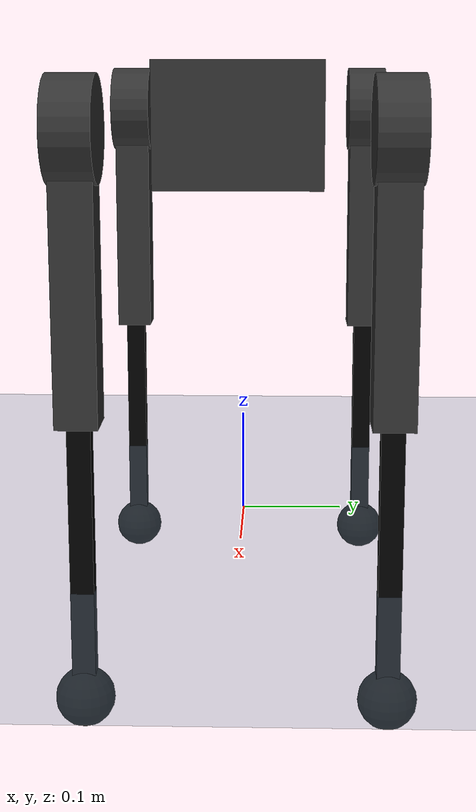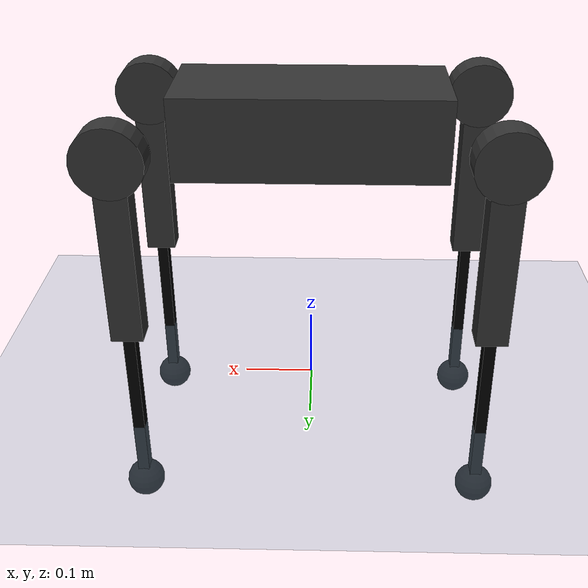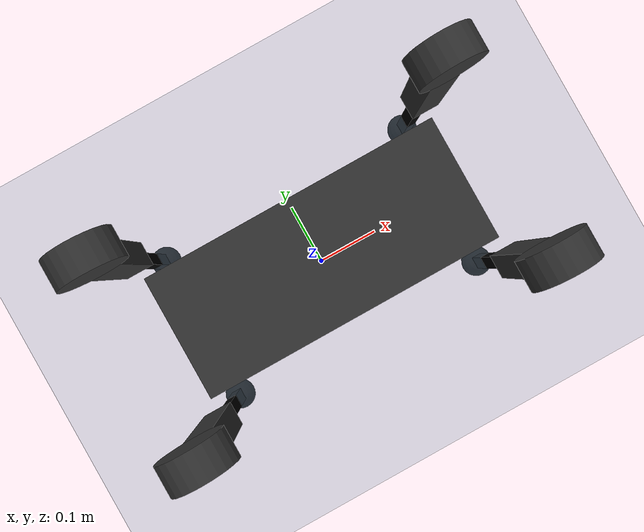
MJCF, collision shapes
<mujoco model="go1 feetonly flat terrain scene">
  <include file="aliengo.xml"/>

  <statistic center="0 0 0.1" extent="0.8" meansize="0.04"/>

  <visual>
    <headlight diffuse=".8 .8 .8" ambient=".2 .2 .2" specular="1 1 1"/>
    <rgba force="1 0 0 1"/>
    <global azimuth="120" elevation="-20"/>
    <map force="0.01"/>
    <scale forcewidth="0.3" contactwidth="0.5" contactheight="0.2"/>
    <quality shadowsize="8192"/>
  </visual>

  <asset>
    <texture type="skybox" builtin="gradient" rgb1="1 1 1" rgb2="1 1 1" width="800" height="800"/>
    <texture type="2d" name="groundplane" builtin="checker" mark="edge" rgb1="1 1 1" rgb2="1 1 1" markrgb="0 0 0"
      width="300" height="300"/>
    <material name="groundplane" texture="groundplane" texuniform="true" texrepeat="5 5" reflectance="0"/>
  </asset>

  <worldbody>
    <geom name="floor" size="0 0 0.01" type="plane" material="groundplane" contype="1" conaffinity="0" priority="1"
      friction="0.6" condim="3"/>
  </worldbody>

</mujoco>

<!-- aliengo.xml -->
<mujoco model="aliengo_description">
    <compiler angle="radian" meshdir="meshes/" />
    <size njmax="500" nconmax="100" />
    <option gravity='0 0 -9.806' iterations='50' solver='Newton' timestep='0.002' cone='elliptic'  impratio="1000"/>

    <default>
        <geom contype="1" conaffinity="1" friction="1 0.3 0.3" rgba="0.5 0.6 0.7 1" margin="0.001" group="0"/>

        <light castshadow="false" diffuse="1 1 1"/>
        <motor ctrlrange="-44.4 44.4" ctrllimited="true"/>
        <camera fovy="60"/>
        <joint damping="0.0" armature="0.0" frictionloss="0.0" />

    </default>

    <asset>
        <mesh name="trunk" file="trunk.stl" />
        <mesh name="hip" file="hip.stl" />
        <mesh name="thigh_mirror" file="thigh_mirror.stl" />
        <mesh name="calf" file="calf.stl" />
        <mesh name="thigh" file="thigh.stl" />
    </asset>

    <asset>
        <texture type="skybox" builtin="gradient" rgb1="1.0 1.0 1.0" rgb2="1.0 1.0 1.0" width="512" height="512"/>
        <texture name="plane" type="2d" builtin="flat" rgb1="0.188 0.188 0.188" rgb2="0.188 0.188 0.188" width="512" height="512" mark="cross" markrgb="1 1 1"/>
        <material name="plane" reflectance="0.0" texture="plane" texrepeat="3 3" texuniform="true"/>
    </asset>

    <visual>
        <rgba com="0.502 1.0 0 0.5" contactforce="0.98 0.4 0.4 0.7" contactpoint="1.0 1.0 0.6 0.4"/>
        <scale com="0.2" forcewidth="0.035" contactwidth="0.10" contactheight="0.04"/>
    </visual>

    <worldbody>

        <light directional="true" diffuse=".8 .8 .8" pos="0 0 10" dir="0 0 -10"/>
        <camera name="track" mode="trackcom" pos="0 -1.3 1.6" xyaxes="1 0 0 0 0.707 0.707"/>

        <body name="trunk" pos="0 0 0.4">
            <inertial pos="0.00846406 0.00404455 -0.000762916" quat="-3.12625e-05 0.708321 0.00247254 0.705886" mass="9.042" diaginertia="0.174706 0.161175 0.033357" />
            <joint type="free" />
            <geom type="mesh" contype="0" conaffinity="0" group="1" rgba="0.2 0.2 0.2 1" mesh="trunk" />
            <geom size="0.18 0.075 0.056" type="box" rgba="0.2 0.2 0.2 0" />
            <geom size="0.0005 0.0005 0.0005" type="box" contype="0" conaffinity="0" group="1" rgba="0.8 0 0 0" />
            <geom size="0.0005 0.0005 0.0005" type="box" rgba="0.8 0 0 0" />
            <site name="imu" pos="0 0 0"/>

            <body name="FR_hip" pos="0.2399 -0.051 0">
                <inertial pos="-0.022191 -0.015144 -1.5e-05" quat="0.0135493 0.706835 -0.0117635 0.707151" mass="1.993" diaginertia="0.00558695 0.00491009 0.00290132" />
                <joint name="FR_hip_joint" pos="0 0 0" axis="1 0 0" limited="true" range="-1.22173 1.22173" />
                <geom quat="0 1 0 0" type="mesh" contype="0" conaffinity="0" group="1" rgba="0.2 0.2 0.2 1" mesh="hip" />
                <geom size="0.046 0.0209" pos="0 -0.083 0" quat="0.707107 0.707107 0 0" type="cylinder" rgba="0.2 0.2 0.2 0" />
                <body name="FR_thigh" pos="0 -0.083 0">
                    <inertial pos="-0.005607 0.003877 -0.048199" quat="0.694544 -0.0335669 -0.031246 0.717987" mass="0.639" diaginertia="0.0058474 0.00571186 0.000324584" />
                    <joint name="FR_thigh_joint" pos="0 0 0" axis="0 1 0" />
                    <geom type="mesh" contype="0" conaffinity="0" group="1" rgba="0.2 0.2 0.2 1" mesh="thigh_mirror" />
                    <geom size="0.125 0.0187 0.0215" pos="0 0 -0.125" quat="0.707107 0 0.707107 0" type="box" rgba="0.2 0.2 0.2 0" />
                    <body name="FR_calf" pos="0 0 -0.25">
                        <inertial pos="0.00215606 4.88427e-05 -0.166671" quat="0.707462 0.00517582 0.00535172 0.706712" mass="0.267" diaginertia="0.00690975 0.00689712 5.4885e-05" />
                        <joint name="FR_calf_joint" pos="0 0 0" axis="0 1 0" limited="true" range="-2.77507 -0.645772" />
                        <geom type="mesh" contype="0" conaffinity="0" group="1" rgba="0 0 0 1" mesh="calf" />
                        <geom size="0.125 0.0104 0.008" pos="0 0 -0.125" quat="0.707107 0 0.707107 0" type="box" rgba="0 0 0 0" />
                        <geom name="FR_foot" size="0.0165" pos="0 0 -0.25" contype="0" conaffinity="0" group="1" rgba="0 0 0 1" />
                        <geom size="0.0265" pos="0 0 -0.25" rgba="0 0 0 1" />
                    </body>
                </body>
            </body>
            <body name="FL_hip" pos="0.2399 0.051 0">
                <inertial pos="-0.022191 0.015144 -1.5e-05" quat="-0.0135493 0.706835 0.0117635 0.707151" mass="1.993" diaginertia="0.00558695 0.00491009 0.00290132" />
                <joint name="FL_hip_joint" pos="0 0 0" axis="1 0 0" limited="true" range="-1.22173 1.22173" />
                <geom type="mesh" contype="0" conaffinity="0" group="1" rgba="0.2 0.2 0.2 1" mesh="hip" />
                <geom size="0.046 0.0209" pos="0 0.083 0" quat="0.707107 0.707107 0 0" type="cylinder" rgba="0.2 0.2 0.2 0" />
                <body name="FL_thigh" pos="0 0.083 0">
                    <inertial pos="-0.005607 -0.003877 -0.048199" quat="0.717987 -0.031246 -0.0335669 0.694544" mass="0.639" diaginertia="0.0058474 0.00571186 0.000324584" />
                    <joint name="FL_thigh_joint" pos="0 0 0" axis="0 1 0" />
                    <geom type="mesh" contype="0" conaffinity="0" group="1" rgba="0.2 0.2 0.2 1" mesh="thigh" />
                    <geom size="0.125 0.0187 0.0215" pos="0 0 -0.125" quat="0.707107 0 0.707107 0" type="box" rgba="0.2 0.2 0.2 0" />
                    <body name="FL_calf" pos="0 0 -0.25">
                        <inertial pos="0.00215606 4.88427e-05 -0.166671" quat="0.707462 0.00517582 0.00535172 0.706712" mass="0.267" diaginertia="0.00690975 0.00689712 5.4885e-05" />
                        <joint name="FL_calf_joint" pos="0 0 0" axis="0 1 0" limited="true" range="-2.77507 -0.645772" />
                        <geom type="mesh" contype="0" conaffinity="0" group="1" rgba="0 0 0 1" mesh="calf" />
                        <geom size="0.125 0.0104 0.008" pos="0 0 -0.125" quat="0.707107 0 0.707107 0" type="box" rgba="0 0 0 0" />
                        <geom name="FL_foot" size="0.0165" pos="0 0 -0.25" contype="0" conaffinity="0" group="1" rgba="0 0 0 1" />
                        <geom size="0.0265" pos="0 0 -0.25" rgba="0 0 0 1" />
                    </body>
                </body>
            </body>
            <body name="RR_hip" pos="-0.2399 -0.051 0">
                <inertial pos="0.022191 -0.015144 -1.5e-05" quat="-0.0117635 0.707151 0.0135493 0.706835" mass="1.993" diaginertia="0.00558695 0.00491009 0.00290132" />
                <joint name="RR_hip_joint" pos="0 0 0" axis="1 0 0" limited="true" range="-1.22173 1.22173" />
                <geom quat="0 0 0 -1" type="mesh" contype="0" conaffinity="0" group="1" rgba="0.2 0.2 0.2 1" mesh="hip" />
                <geom size="0.046 0.0209" pos="0 -0.083 0" quat="0.707107 0.707107 0 0" type="cylinder" rgba="0.2 0.2 0.2 0" />
                <body name="RR_thigh" pos="0 -0.083 0">
                    <inertial pos="-0.005607 0.003877 -0.048199" quat="0.694544 -0.0335669 -0.031246 0.717987" mass="0.639" diaginertia="0.0058474 0.00571186 0.000324584" />
                    <joint name="RR_thigh_joint" pos="0 0 0" axis="0 1 0" />
                    <geom type="mesh" contype="0" conaffinity="0" group="1" rgba="0.2 0.2 0.2 1" mesh="thigh_mirror" />
                    <geom size="0.125 0.0187 0.0215" pos="0 0 -0.125" quat="0.707107 0 0.707107 0" type="box" rgba="0.2 0.2 0.2 0" />
                    <body name="RR_calf" pos="0 0 -0.25">
                        <inertial pos="0.00215606 4.88427e-05 -0.166671" quat="0.707462 0.00517582 0.00535172 0.706712" mass="0.267" diaginertia="0.00690975 0.00689712 5.4885e-05" />
                        <joint name="RR_calf_joint" pos="0 0 0" axis="0 1 0" limited="true" range="-2.77507 -0.645772" />
                        <geom type="mesh" contype="0" conaffinity="0" group="1" rgba="0 0 0 1" mesh="calf" />
                        <geom size="0.125 0.0104 0.008" pos="0 0 -0.125" quat="0.707107 0 0.707107 0" type="box" rgba="0 0 0 0" />
                        <geom name="RR_foot" size="0.0165" pos="0 0 -0.25" contype="0" conaffinity="0" group="1" rgba="0 0 0 1" />
                        <geom size="0.0265" pos="0 0 -0.25" rgba="0 0 0 1" />
                    </body>
                </body>
            </body>
            <body name="RL_hip" pos="-0.2399 0.051 0">
                <inertial pos="0.022191 0.015144 -1.5e-05" quat="0.0117635 0.707151 -0.0135493 0.706835" mass="1.993" diaginertia="0.00558695 0.00491009 0.00290132" />
                <joint name="RL_hip_joint" pos="0 0 0" axis="1 0 0" limited="true" range="-1.22173 1.22173" />
                <geom quat="0 0 1 0" type="mesh" contype="0" conaffinity="0" group="1" rgba="0.2 0.2 0.2 1" mesh="hip" />
                <geom size="0.046 0.0209" pos="0 0.083 0" quat="0.707107 0.707107 0 0" type="cylinder" rgba="0.2 0.2 0.2 0" />
                <body name="RL_thigh" pos="0 0.083 0">
                    <inertial pos="-0.005607 -0.003877 -0.048199" quat="0.717987 -0.031246 -0.0335669 0.694544" mass="0.639" diaginertia="0.0058474 0.00571186 0.000324584" />
                    <joint name="RL_thigh_joint" pos="0 0 0" axis="0 1 0" />
                    <geom type="mesh" contype="0" conaffinity="0" group="1" rgba="0.2 0.2 0.2 1" mesh="thigh" />
                    <geom size="0.125 0.0187 0.0215" pos="0 0 -0.125" quat="0.707107 0 0.707107 0" type="box" rgba="0.2 0.2 0.2 0" />
                    <body name="RL_calf" pos="0 0 -0.25">
                        <inertial pos="0.00215606 4.88427e-05 -0.166671" quat="0.707462 0.00517582 0.00535172 0.706712" mass="0.267" diaginertia="0.00690975 0.00689712 5.4885e-05" />
                        <joint name="RL_calf_joint" pos="0 0 0" axis="0 1 0" limited="true" range="-2.77507 -0.645772" />
                        <geom type="mesh" contype="0" conaffinity="0" group="1" rgba="0 0 0 1" mesh="calf" />
                        <geom size="0.125 0.0104 0.008" pos="0 0 -0.125" quat="0.707107 0 0.707107 0" type="box" rgba="0 0 0 0" />
                        <geom name="RL_foot" size="0.0165" pos="0 0 -0.25" contype="0" conaffinity="0" group="1" rgba="0 0 0 1" />
                        <geom size="0.0265" pos="0 0 -0.25" rgba="0 0 0 1" />
                    </body>
                </body>
            </body>
        </body>
    </worldbody>

    <actuator>

        <motor name="FR_hip"       gear="1" joint="FR_hip_joint"/>
        <motor name="FR_thigh"       gear="1" joint="FR_thigh_joint"/>
        <motor name="FR_calf"       gear="1" joint="FR_calf_joint"/>
        <motor name="FL_hip"     gear="1" joint="FL_hip_joint"/>
        <motor name="FL_thigh"     gear="1" joint="FL_thigh_joint"/>
        <motor name="FL_calf"     gear="1" joint="FL_calf_joint"/>
        <motor name="RR_hip"      gear="1" joint="RR_hip_joint"/>
        <motor name="RR_thigh"   gear="1" joint="RR_thigh_joint"/>
        <motor name="RR_calf"   gear="1" joint="RR_calf_joint" />
        <motor name="RL_hip"      gear="1" joint="RL_hip_joint"/>
        <motor name="RL_thigh"      gear="1" joint="RL_thigh_joint"/>
        <motor name="RL_calf"      gear="1" joint="RL_calf_joint"/>
    </actuator>

    <sensor>

        <jointpos name="FR_hip_pos"     joint="FR_hip_joint"/>
        <jointpos name="FR_thigh_pos"   joint="FR_thigh_joint"/>
        <jointpos name="FR_calf_pos"    joint="FR_calf_joint"/>
        <jointpos name="FL_hip_pos"     joint="FL_hip_joint"/>
        <jointpos name="FL_thigh_pos"   joint="FL_thigh_joint"/>
        <jointpos name="FL_calf_pos"    joint="FL_calf_joint"/>
        <jointpos name="RR_hip_pos"     joint="RR_hip_joint"/>
        <jointpos name="RR_thigh_pos"   joint="RR_thigh_joint"/>
        <jointpos name="RR_calf_pos"    joint="RR_calf_joint" />
        <jointpos name="RL_hip_pos"     joint="RL_hip_joint"/>
        <jointpos name="RL_thigh_pos"   joint="RL_thigh_joint"/>
        <jointpos name="RL_calf_pos"    joint="RL_calf_joint"/>

        <jointvel name="FR_hip_vel"     joint="FR_hip_joint"/>
        <jointvel name="FR_thigh_vel"   joint="FR_thigh_joint"/>
        <jointvel name="FR_calf_vel"    joint="FR_calf_joint"/>
        <jointvel name="FL_hip_vel"     joint="FL_hip_joint"/>
        <jointvel name="FL_thigh_vel"   joint="FL_thigh_joint"/>
        <jointvel name="FL_calf_vel"    joint="FL_calf_joint"/>
        <jointvel name="RR_hip_vel"     joint="RR_hip_joint"/>
        <jointvel name="RR_thigh_vel"   joint="RR_thigh_joint"/>
        <jointvel name="RR_calf_vel"    joint="RR_calf_joint" />
        <jointvel name="RL_hip_vel"     joint="RL_hip_joint"/>
        <jointvel name="RL_thigh_vel"   joint="RL_thigh_joint"/>
        <jointvel name="RL_calf_vel"    joint="RL_calf_joint"/>

        <accelerometer name="Body_Acc" site="imu"/>

        <gyro name="Body_Gyro" site="imu"/>

        <framepos name="Body_Pos" objtype="site" objname="imu"/>

        <framequat name="Body_Quat" objtype="site" objname="imu"/>

    </sensor>
</mujoco>
